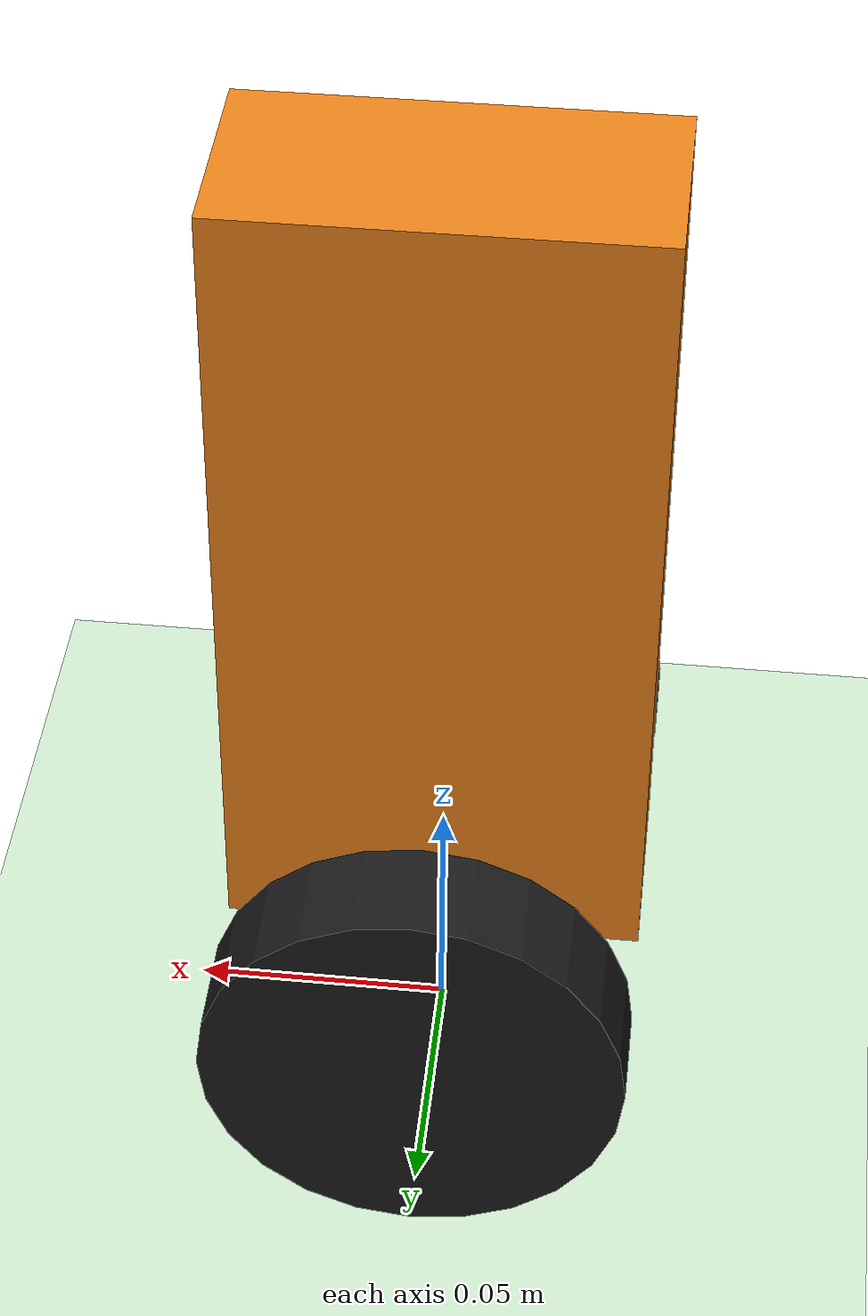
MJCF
<mujoco model="balance_bot">
  <compiler angle="radian" inertiafromgeom="false"/>

  <option timestep="0.001" gravity="0 0 -9.81">
    <flag contact="enable" warmstart="enable"/>
  </option>

  <visual>
    <rgba haze="0.15 0.25 0.35 1"/>
    <quality shadowsize="2048"/>
    <global fovy="50"/>
  </visual>

  <!-- Default tracking camera for viewer mode -->
  <statistic center="0 0 0.3" extent="3"/>

  <default>
    <geom contype="1" conaffinity="1" condim="3" friction="1.5 0.1 0.1"/>
    <motor ctrlrange="-1 1"/>
  </default>

  <worldbody>
    <light pos="0 0 3" dir="0 0 -1" directional="true"/>

    <!-- Floor with high friction for no-slip rolling -->
    <geom name="floor" type="plane" size="0 0 0.05" rgba=".8 .9 .8 1"/>

    <!-- Robot with freejoint (position emerges from wheel rolling) -->
    <body name="robot" pos="0 0 0.04" euler="0 0 0">
      <freejoint name="robot_free"/>
      <!-- Explicit inertial definition so MuJoCo mass matches Table 2 -->
      <inertial mass="0.43" pos="0 0 0.0275" diaginertia="0.00149 0.00149 0.00149"/>

      <camera name="chase" mode="fixed" pos="-0.8 0 0.4" xyaxes="0 -1 0 0 0 1"/>
      <camera name="tracking_cam" mode="track" target="robot" pos="-1.5 0 1" xyaxes="0 -1 0 0 0 1"/>

      <!-- Visual body shell (massless, inertia handled above) -->
    <geom name="body_box" type="box" size="0.04 0.02 0.08" pos="0 0 0.08"
            rgba="0.9 0.5 0.1 1" contype="0" conaffinity="0" density="0"/>

      <!-- Right wheel at axle level, offset -0.05m in y (track width = 0.1 m) -->
      <body name="wheel_r" pos="0 -0.05 0.0">
        <inertial mass="0.02" pos="0 0 0" diaginertia="0.0001 0.0001 0.0001"/>
        <joint name="motor_r" type="hinge" axis="0 1 0" damping="0.001"/>
        <geom name="wheel_r_geom" type="cylinder" size="0.04 0.01"
              rgba="0.1 0.1 0.1 1" density="0"
              euler="1.5708 0 0"/>
      </body>

      <!-- Left wheel mirrors right -->
      <body name="wheel_l" pos="0 0.05 0.0">
        <inertial mass="0.02" pos="0 0 0" diaginertia="0.0001 0.0001 0.0001"/>
        <joint name="motor_l" type="hinge" axis="0 1 0" damping="0.001"/>
        <geom name="wheel_l_geom" type="cylinder" size="0.04 0.01"
              rgba="0.1 0.1 0.1 1" density="0"
              euler="1.5708 0 0"/>
      </body>
    </body>
  </worldbody>

  <actuator>
    <!-- Direct torque control on wheel joints -->
    <motor name="left" joint="motor_l" gear="1.0"/>
    <motor name="right" joint="motor_r" gear="1.0"/>
  </actuator>
</mujoco>
